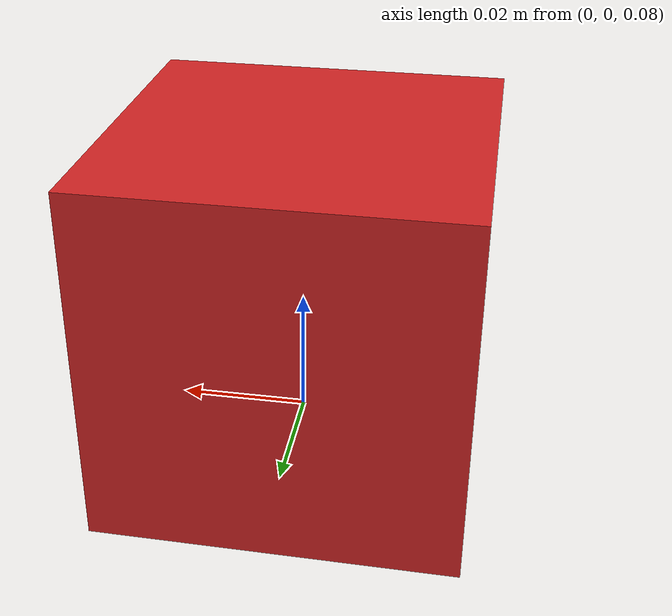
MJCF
<mujoco model="cube_56mm">
  <!-- 56x56x56mm 정육면체, x/y 슬라이드만 있어 높이(z) 고정, 회전 없음.
       z=0.10m: (CAD 수정본 기준) 4손가락 완전히 오므렸을 때 손끝이 모이는 실측 높이 -->
  <default>
    <default class="cube">
      <geom friction="1.0 0.01 0.001" conaffinity="1" condim="4"/>
    </default>
  </default>
  <worldbody>
    <body name="cube" pos="0 0 0.10" quat="1 0 0 0" childclass="cube">
      <joint name="cube_slide_x" type="slide" axis="1 0 0" damping="0.5"/>
      <joint name="cube_slide_y" type="slide" axis="0 1 0" damping="0.5"/>
      <geom name="cube" type="box" size="0.028 0.028 0.028" mass="0.07"
            group="2" rgba="0.85 0.15 0.15 1"/>
      <site name="cube_center" pos="0 0 0" group="4" size="0.001"/>
    </body>
  </worldbody>
</mujoco>
